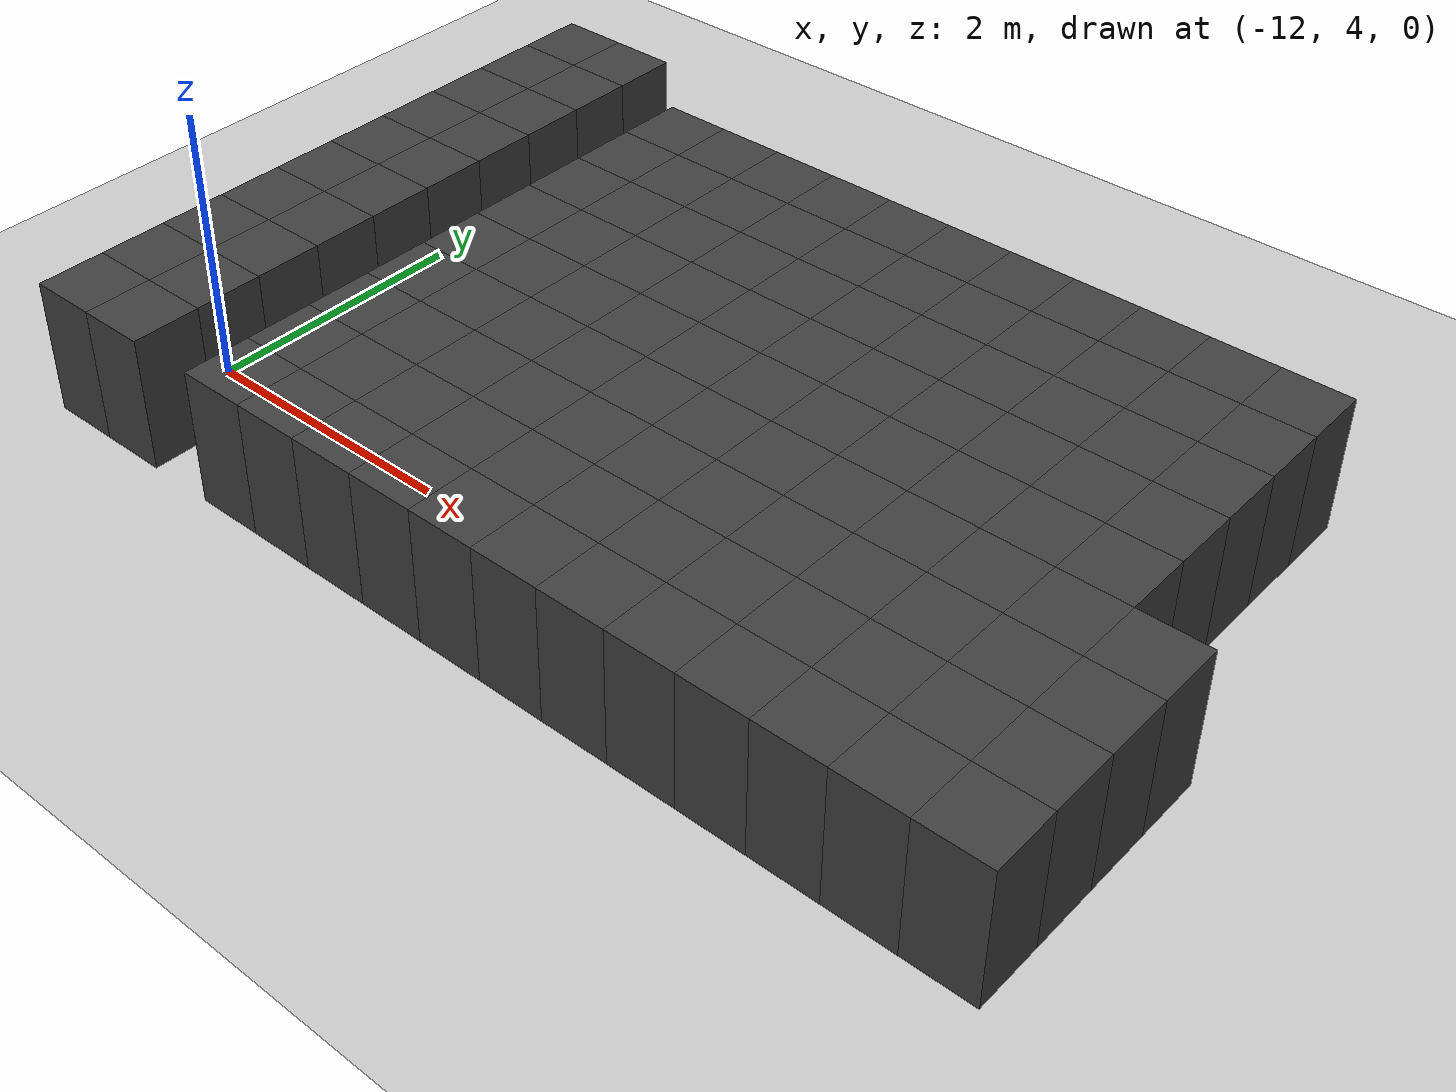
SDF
<sdf version="1.7">
 <world name="map_12818">
  <model name="ground_plane">
   <static>true</static>
   <link name="link">
    <collision name="collision">
     <geometry><plane><normal>0 0 1</normal><size>200 200</size></plane></geometry>
    </collision>
    <visual name="visual">
     <geometry><plane><normal>0 0 1</normal><size>200 200</size></plane></geometry>
     <material><ambient>0.8 0.8 0.8 1</ambient><diffuse>0.8 0.8 0.8 1</diffuse></material>
    </visual>
   </link>
  </model>
  <model name="maze_environment">
   <static>true</static>
   <link name="wall_428">
    <pose>-12.250 7.750 0.500 0 0 0</pose>
    <collision name="col"><geometry><box><size>0.5 0.5 1.0</size></box></geometry></collision>
    <visual name="vis">
     <geometry><box><size>0.5 0.5 1.0</size></box></geometry>
     <material><ambient>0.15 0.15 0.15 1</ambient><diffuse>0.25 0.25 0.25 1</diffuse></material>
    </visual>
   </link>
   <link name="wall_429">
    <pose>-11.750 7.750 0.500 0 0 0</pose>
    <collision name="col"><geometry><box><size>0.5 0.5 1.0</size></box></geometry></collision>
    <visual name="vis">
     <geometry><box><size>0.5 0.5 1.0</size></box></geometry>
     <material><ambient>0.15 0.15 0.15 1</ambient><diffuse>0.25 0.25 0.25 1</diffuse></material>
    </visual>
   </link>
   <link name="wall_469">
    <pose>-12.250 7.250 0.500 0 0 0</pose>
    <collision name="col"><geometry><box><size>0.5 0.5 1.0</size></box></geometry></collision>
    <visual name="vis">
     <geometry><box><size>0.5 0.5 1.0</size></box></geometry>
     <material><ambient>0.15 0.15 0.15 1</ambient><diffuse>0.25 0.25 0.25 1</diffuse></material>
    </visual>
   </link>
   <link name="wall_470">
    <pose>-11.750 7.250 0.500 0 0 0</pose>
    <collision name="col"><geometry><box><size>0.5 0.5 1.0</size></box></geometry></collision>
    <visual name="vis">
     <geometry><box><size>0.5 0.5 1.0</size></box></geometry>
     <material><ambient>0.15 0.15 0.15 1</ambient><diffuse>0.25 0.25 0.25 1</diffuse></material>
    </visual>
   </link>
   <link name="wall_471">
    <pose>-10.750 7.250 0.500 0 0 0</pose>
    <collision name="col"><geometry><box><size>0.5 0.5 1.0</size></box></geometry></collision>
    <visual name="vis">
     <geometry><box><size>0.5 0.5 1.0</size></box></geometry>
     <material><ambient>0.15 0.15 0.15 1</ambient><diffuse>0.25 0.25 0.25 1</diffuse></material>
    </visual>
   </link>
   <link name="wall_472">
    <pose>-10.250 7.250 0.500 0 0 0</pose>
    <collision name="col"><geometry><box><size>0.5 0.5 1.0</size></box></geometry></collision>
    <visual name="vis">
     <geometry><box><size>0.5 0.5 1.0</size></box></geometry>
     <material><ambient>0.15 0.15 0.15 1</ambient><diffuse>0.25 0.25 0.25 1</diffuse></material>
    </visual>
   </link>
   <link name="wall_473">
    <pose>-9.750 7.250 0.500 0 0 0</pose>
    <collision name="col"><geometry><box><size>0.5 0.5 1.0</size></box></geometry></collision>
    <visual name="vis">
     <geometry><box><size>0.5 0.5 1.0</size></box></geometry>
     <material><ambient>0.15 0.15 0.15 1</ambient><diffuse>0.25 0.25 0.25 1</diffuse></material>
    </visual>
   </link>
   <link name="wall_474">
    <pose>-9.250 7.250 0.500 0 0 0</pose>
    <collision name="col"><geometry><box><size>0.5 0.5 1.0</size></box></geometry></collision>
    <visual name="vis">
     <geometry><box><size>0.5 0.5 1.0</size></box></geometry>
     <material><ambient>0.15 0.15 0.15 1</ambient><diffuse>0.25 0.25 0.25 1</diffuse></material>
    </visual>
   </link>
   <link name="wall_475">
    <pose>-8.750 7.250 0.500 0 0 0</pose>
    <collision name="col"><geometry><box><size>0.5 0.5 1.0</size></box></geometry></collision>
    <visual name="vis">
     <geometry><box><size>0.5 0.5 1.0</size></box></geometry>
     <material><ambient>0.15 0.15 0.15 1</ambient><diffuse>0.25 0.25 0.25 1</diffuse></material>
    </visual>
   </link>
   <link name="wall_476">
    <pose>-8.250 7.250 0.500 0 0 0</pose>
    <collision name="col"><geometry><box><size>0.5 0.5 1.0</size></box></geometry></collision>
    <visual name="vis">
     <geometry><box><size>0.5 0.5 1.0</size></box></geometry>
     <material><ambient>0.15 0.15 0.15 1</ambient><diffuse>0.25 0.25 0.25 1</diffuse></material>
    </visual>
   </link>
   <link name="wall_477">
    <pose>-7.750 7.250 0.500 0 0 0</pose>
    <collision name="col"><geometry><box><size>0.5 0.5 1.0</size></box></geometry></collision>
    <visual name="vis">
     <geometry><box><size>0.5 0.5 1.0</size></box></geometry>
     <material><ambient>0.15 0.15 0.15 1</ambient><diffuse>0.25 0.25 0.25 1</diffuse></material>
    </visual>
   </link>
   <link name="wall_478">
    <pose>-7.250 7.250 0.500 0 0 0</pose>
    <collision name="col"><geometry><box><size>0.5 0.5 1.0</size></box></geometry></collision>
    <visual name="vis">
     <geometry><box><size>0.5 0.5 1.0</size></box></geometry>
     <material><ambient>0.15 0.15 0.15 1</ambient><diffuse>0.25 0.25 0.25 1</diffuse></material>
    </visual>
   </link>
   <link name="wall_479">
    <pose>-6.750 7.250 0.500 0 0 0</pose>
    <collision name="col"><geometry><box><size>0.5 0.5 1.0</size></box></geometry></collision>
    <visual name="vis">
     <geometry><box><size>0.5 0.5 1.0</size></box></geometry>
     <material><ambient>0.15 0.15 0.15 1</ambient><diffuse>0.25 0.25 0.25 1</diffuse></material>
    </visual>
   </link>
   <link name="wall_480">
    <pose>-6.250 7.250 0.500 0 0 0</pose>
    <collision name="col"><geometry><box><size>0.5 0.5 1.0</size></box></geometry></collision>
    <visual name="vis">
     <geometry><box><size>0.5 0.5 1.0</size></box></geometry>
     <material><ambient>0.15 0.15 0.15 1</ambient><diffuse>0.25 0.25 0.25 1</diffuse></material>
    </visual>
   </link>
   <link name="wall_481">
    <pose>-5.750 7.250 0.500 0 0 0</pose>
    <collision name="col"><geometry><box><size>0.5 0.5 1.0</size></box></geometry></collision>
    <visual name="vis">
     <geometry><box><size>0.5 0.5 1.0</size></box></geometry>
     <material><ambient>0.15 0.15 0.15 1</ambient><diffuse>0.25 0.25 0.25 1</diffuse></material>
    </visual>
   </link>
   <link name="wall_513">
    <pose>-12.250 6.750 0.500 0 0 0</pose>
    <collision name="col"><geometry><box><size>0.5 0.5 1.0</size></box></geometry></collision>
    <visual name="vis">
     <geometry><box><size>0.5 0.5 1.0</size></box></geometry>
     <material><ambient>0.15 0.15 0.15 1</ambient><diffuse>0.25 0.25 0.25 1</diffuse></material>
    </visual>
   </link>
   <link name="wall_514">
    <pose>-11.750 6.750 0.500 0 0 0</pose>
    <collision name="col"><geometry><box><size>0.5 0.5 1.0</size></box></geometry></collision>
    <visual name="vis">
     <geometry><box><size>0.5 0.5 1.0</size></box></geometry>
     <material><ambient>0.15 0.15 0.15 1</ambient><diffuse>0.25 0.25 0.25 1</diffuse></material>
    </visual>
   </link>
   <link name="wall_515">
    <pose>-10.750 6.750 0.500 0 0 0</pose>
    <collision name="col"><geometry><box><size>0.5 0.5 1.0</size></box></geometry></collision>
    <visual name="vis">
     <geometry><box><size>0.5 0.5 1.0</size></box></geometry>
     <material><ambient>0.15 0.15 0.15 1</ambient><diffuse>0.25 0.25 0.25 1</diffuse></material>
    </visual>
   </link>
   <link name="wall_516">
    <pose>-10.250 6.750 0.500 0 0 0</pose>
    <collision name="col"><geometry><box><size>0.5 0.5 1.0</size></box></geometry></collision>
    <visual name="vis">
     <geometry><box><size>0.5 0.5 1.0</size></box></geometry>
     <material><ambient>0.15 0.15 0.15 1</ambient><diffuse>0.25 0.25 0.25 1</diffuse></material>
    </visual>
   </link>
   <link name="wall_517">
    <pose>-9.750 6.750 0.500 0 0 0</pose>
    <collision name="col"><geometry><box><size>0.5 0.5 1.0</size></box></geometry></collision>
    <visual name="vis">
     <geometry><box><size>0.5 0.5 1.0</size></box></geometry>
     <material><ambient>0.15 0.15 0.15 1</ambient><diffuse>0.25 0.25 0.25 1</diffuse></material>
    </visual>
   </link>
   <link name="wall_518">
    <pose>-9.250 6.750 0.500 0 0 0</pose>
    <collision name="col"><geometry><box><size>0.5 0.5 1.0</size></box></geometry></collision>
    <visual name="vis">
     <geometry><box><size>0.5 0.5 1.0</size></box></geometry>
     <material><ambient>0.15 0.15 0.15 1</ambient><diffuse>0.25 0.25 0.25 1</diffuse></material>
    </visual>
   </link>
   <link name="wall_519">
    <pose>-8.750 6.750 0.500 0 0 0</pose>
    <collision name="col"><geometry><box><size>0.5 0.5 1.0</size></box></geometry></collision>
    <visual name="vis">
     <geometry><box><size>0.5 0.5 1.0</size></box></geometry>
     <material><ambient>0.15 0.15 0.15 1</ambient><diffuse>0.25 0.25 0.25 1</diffuse></material>
    </visual>
   </link>
   <link name="wall_520">
    <pose>-8.250 6.750 0.500 0 0 0</pose>
    <collision name="col"><geometry><box><size>0.5 0.5 1.0</size></box></geometry></collision>
    <visual name="vis">
     <geometry><box><size>0.5 0.5 1.0</size></box></geometry>
     <material><ambient>0.15 0.15 0.15 1</ambient><diffuse>0.25 0.25 0.25 1</diffuse></material>
    </visual>
   </link>
   <link name="wall_521">
    <pose>-7.750 6.750 0.500 0 0 0</pose>
    <collision name="col"><geometry><box><size>0.5 0.5 1.0</size></box></geometry></collision>
    <visual name="vis">
     <geometry><box><size>0.5 0.5 1.0</size></box></geometry>
     <material><ambient>0.15 0.15 0.15 1</ambient><diffuse>0.25 0.25 0.25 1</diffuse></material>
    </visual>
   </link>
   <link name="wall_522">
    <pose>-7.250 6.750 0.500 0 0 0</pose>
    <collision name="col"><geometry><box><size>0.5 0.5 1.0</size></box></geometry></collision>
    <visual name="vis">
     <geometry><box><size>0.5 0.5 1.0</size></box></geometry>
     <material><ambient>0.15 0.15 0.15 1</ambient><diffuse>0.25 0.25 0.25 1</diffuse></material>
    </visual>
   </link>
   <link name="wall_523">
    <pose>-6.750 6.750 0.500 0 0 0</pose>
    <collision name="col"><geometry><box><size>0.5 0.5 1.0</size></box></geometry></collision>
    <visual name="vis">
     <geometry><box><size>0.5 0.5 1.0</size></box></geometry>
     <material><ambient>0.15 0.15 0.15 1</ambient><diffuse>0.25 0.25 0.25 1</diffuse></material>
    </visual>
   </link>
   <link name="wall_524">
    <pose>-6.250 6.750 0.500 0 0 0</pose>
    <collision name="col"><geometry><box><size>0.5 0.5 1.0</size></box></geometry></collision>
    <visual name="vis">
     <geometry><box><size>0.5 0.5 1.0</size></box></geometry>
     <material><ambient>0.15 0.15 0.15 1</ambient><diffuse>0.25 0.25 0.25 1</diffuse></material>
    </visual>
   </link>
   <link name="wall_525">
    <pose>-5.750 6.750 0.500 0 0 0</pose>
    <collision name="col"><geometry><box><size>0.5 0.5 1.0</size></box></geometry></collision>
    <visual name="vis">
     <geometry><box><size>0.5 0.5 1.0</size></box></geometry>
     <material><ambient>0.15 0.15 0.15 1</ambient><diffuse>0.25 0.25 0.25 1</diffuse></material>
    </visual>
   </link>
   <link name="wall_561">
    <pose>-12.250 6.250 0.500 0 0 0</pose>
    <collision name="col"><geometry><box><size>0.5 0.5 1.0</size></box></geometry></collision>
    <visual name="vis">
     <geometry><box><size>0.5 0.5 1.0</size></box></geometry>
     <material><ambient>0.15 0.15 0.15 1</ambient><diffuse>0.25 0.25 0.25 1</diffuse></material>
    </visual>
   </link>
   <link name="wall_562">
    <pose>-11.750 6.250 0.500 0 0 0</pose>
    <collision name="col"><geometry><box><size>0.5 0.5 1.0</size></box></geometry></collision>
    <visual name="vis">
     <geometry><box><size>0.5 0.5 1.0</size></box></geometry>
     <material><ambient>0.15 0.15 0.15 1</ambient><diffuse>0.25 0.25 0.25 1</diffuse></material>
    </visual>
   </link>
   <link name="wall_563">
    <pose>-10.750 6.250 0.500 0 0 0</pose>
    <collision name="col"><geometry><box><size>0.5 0.5 1.0</size></box></geometry></collision>
    <visual name="vis">
     <geometry><box><size>0.5 0.5 1.0</size></box></geometry>
     <material><ambient>0.15 0.15 0.15 1</ambient><diffuse>0.25 0.25 0.25 1</diffuse></material>
    </visual>
   </link>
   <link name="wall_564">
    <pose>-10.250 6.250 0.500 0 0 0</pose>
    <collision name="col"><geometry><box><size>0.5 0.5 1.0</size></box></geometry></collision>
    <visual name="vis">
     <geometry><box><size>0.5 0.5 1.0</size></box></geometry>
     <material><ambient>0.15 0.15 0.15 1</ambient><diffuse>0.25 0.25 0.25 1</diffuse></material>
    </visual>
   </link>
   <link name="wall_565">
    <pose>-9.750 6.250 0.500 0 0 0</pose>
    <collision name="col"><geometry><box><size>0.5 0.5 1.0</size></box></geometry></collision>
    <visual name="vis">
     <geometry><box><size>0.5 0.5 1.0</size></box></geometry>
     <material><ambient>0.15 0.15 0.15 1</ambient><diffuse>0.25 0.25 0.25 1</diffuse></material>
    </visual>
   </link>
   <link name="wall_566">
    <pose>-9.250 6.250 0.500 0 0 0</pose>
    <collision name="col"><geometry><box><size>0.5 0.5 1.0</size></box></geometry></collision>
    <visual name="vis">
     <geometry><box><size>0.5 0.5 1.0</size></box></geometry>
     <material><ambient>0.15 0.15 0.15 1</ambient><diffuse>0.25 0.25 0.25 1</diffuse></material>
    </visual>
   </link>
   <link name="wall_567">
    <pose>-8.750 6.250 0.500 0 0 0</pose>
    <collision name="col"><geometry><box><size>0.5 0.5 1.0</size></box></geometry></collision>
    <visual name="vis">
     <geometry><box><size>0.5 0.5 1.0</size></box></geometry>
     <material><ambient>0.15 0.15 0.15 1</ambient><diffuse>0.25 0.25 0.25 1</diffuse></material>
    </visual>
   </link>
   <link name="wall_568">
    <pose>-8.250 6.250 0.500 0 0 0</pose>
    <collision name="col"><geometry><box><size>0.5 0.5 1.0</size></box></geometry></collision>
    <visual name="vis">
     <geometry><box><size>0.5 0.5 1.0</size></box></geometry>
     <material><ambient>0.15 0.15 0.15 1</ambient><diffuse>0.25 0.25 0.25 1</diffuse></material>
    </visual>
   </link>
   <link name="wall_569">
    <pose>-7.750 6.250 0.500 0 0 0</pose>
    <collision name="col"><geometry><box><size>0.5 0.5 1.0</size></box></geometry></collision>
    <visual name="vis">
     <geometry><box><size>0.5 0.5 1.0</size></box></geometry>
     <material><ambient>0.15 0.15 0.15 1</ambient><diffuse>0.25 0.25 0.25 1</diffuse></material>
    </visual>
   </link>
   <link name="wall_570">
    <pose>-7.250 6.250 0.500 0 0 0</pose>
    <collision name="col"><geometry><box><size>0.5 0.5 1.0</size></box></geometry></collision>
    <visual name="vis">
     <geometry><box><size>0.5 0.5 1.0</size></box></geometry>
     <material><ambient>0.15 0.15 0.15 1</ambient><diffuse>0.25 0.25 0.25 1</diffuse></material>
    </visual>
   </link>
   <link name="wall_571">
    <pose>-6.750 6.250 0.500 0 0 0</pose>
    <collision name="col"><geometry><box><size>0.5 0.5 1.0</size></box></geometry></collision>
    <visual name="vis">
     <geometry><box><size>0.5 0.5 1.0</size></box></geometry>
     <material><ambient>0.15 0.15 0.15 1</ambient><diffuse>0.25 0.25 0.25 1</diffuse></material>
    </visual>
   </link>
   <link name="wall_572">
    <pose>-6.250 6.250 0.500 0 0 0</pose>
    <collision name="col"><geometry><box><size>0.5 0.5 1.0</size></box></geometry></collision>
    <visual name="vis">
     <geometry><box><size>0.5 0.5 1.0</size></box></geometry>
     <material><ambient>0.15 0.15 0.15 1</ambient><diffuse>0.25 0.25 0.25 1</diffuse></material>
    </visual>
   </link>
   <link name="wall_573">
    <pose>-5.750 6.250 0.500 0 0 0</pose>
    <collision name="col"><geometry><box><size>0.5 0.5 1.0</size></box></geometry></collision>
    <visual name="vis">
     <geometry><box><size>0.5 0.5 1.0</size></box></geometry>
     <material><ambient>0.15 0.15 0.15 1</ambient><diffuse>0.25 0.25 0.25 1</diffuse></material>
    </visual>
   </link>
   <link name="wall_609">
    <pose>-12.250 5.750 0.500 0 0 0</pose>
    <collision name="col"><geometry><box><size>0.5 0.5 1.0</size></box></geometry></collision>
    <visual name="vis">
     <geometry><box><size>0.5 0.5 1.0</size></box></geometry>
     <material><ambient>0.15 0.15 0.15 1</ambient><diffuse>0.25 0.25 0.25 1</diffuse></material>
    </visual>
   </link>
   <link name="wall_610">
    <pose>-11.750 5.750 0.500 0 0 0</pose>
    <collision name="col"><geometry><box><size>0.5 0.5 1.0</size></box></geometry></collision>
    <visual name="vis">
     <geometry><box><size>0.5 0.5 1.0</size></box></geometry>
     <material><ambient>0.15 0.15 0.15 1</ambient><diffuse>0.25 0.25 0.25 1</diffuse></material>
    </visual>
   </link>
   <link name="wall_611">
    <pose>-10.750 5.750 0.500 0 0 0</pose>
    <collision name="col"><geometry><box><size>0.5 0.5 1.0</size></box></geometry></collision>
    <visual name="vis">
     <geometry><box><size>0.5 0.5 1.0</size></box></geometry>
     <material><ambient>0.15 0.15 0.15 1</ambient><diffuse>0.25 0.25 0.25 1</diffuse></material>
    </visual>
   </link>
   <link name="wall_612">
    <pose>-10.250 5.750 0.500 0 0 0</pose>
    <collision name="col"><geometry><box><size>0.5 0.5 1.0</size></box></geometry></collision>
    <visual name="vis">
     <geometry><box><size>0.5 0.5 1.0</size></box></geometry>
     <material><ambient>0.15 0.15 0.15 1</ambient><diffuse>0.25 0.25 0.25 1</diffuse></material>
    </visual>
   </link>
   <link name="wall_613">
    <pose>-9.750 5.750 0.500 0 0 0</pose>
    <collision name="col"><geometry><box><size>0.5 0.5 1.0</size></box></geometry></collision>
    <visual name="vis">
     <geometry><box><size>0.5 0.5 1.0</size></box></geometry>
     <material><ambient>0.15 0.15 0.15 1</ambient><diffuse>0.25 0.25 0.25 1</diffuse></material>
    </visual>
   </link>
   <link name="wall_614">
    <pose>-9.250 5.750 0.500 0 0 0</pose>
    <collision name="col"><geometry><box><size>0.5 0.5 1.0</size></box></geometry></collision>
    <visual name="vis">
     <geometry><box><size>0.5 0.5 1.0</size></box></geometry>
     <material><ambient>0.15 0.15 0.15 1</ambient><diffuse>0.25 0.25 0.25 1</diffuse></material>
    </visual>
   </link>
   <link name="wall_615">
    <pose>-8.750 5.750 0.500 0 0 0</pose>
    <collision name="col"><geometry><box><size>0.5 0.5 1.0</size></box></geometry></collision>
    <visual name="vis">
     <geometry><box><size>0.5 0.5 1.0</size></box></geometry>
     <material><ambient>0.15 0.15 0.15 1</ambient><diffuse>0.25 0.25 0.25 1</diffuse></material>
    </visual>
   </link>
   <link name="wall_616">
    <pose>-8.250 5.750 0.500 0 0 0</pose>
    <collision name="col"><geometry><box><size>0.5 0.5 1.0</size></box></geometry></collision>
    <visual name="vis">
     <geometry><box><size>0.5 0.5 1.0</size></box></geometry>
     <material><ambient>0.15 0.15 0.15 1</ambient><diffuse>0.25 0.25 0.25 1</diffuse></material>
    </visual>
   </link>
   <link name="wall_617">
    <pose>-7.750 5.750 0.500 0 0 0</pose>
    <collision name="col"><geometry><box><size>0.5 0.5 1.0</size></box></geometry></collision>
    <visual name="vis">
     <geometry><box><size>0.5 0.5 1.0</size></box></geometry>
     <material><ambient>0.15 0.15 0.15 1</ambient><diffuse>0.25 0.25 0.25 1</diffuse></material>
    </visual>
   </link>
   <link name="wall_618">
    <pose>-7.250 5.750 0.500 0 0 0</pose>
    <collision name="col"><geometry><box><size>0.5 0.5 1.0</size></box></geometry></collision>
    <visual name="vis">
     <geometry><box><size>0.5 0.5 1.0</size></box></geometry>
     <material><ambient>0.15 0.15 0.15 1</ambient><diffuse>0.25 0.25 0.25 1</diffuse></material>
    </visual>
   </link>
   <link name="wall_619">
    <pose>-6.750 5.750 0.500 0 0 0</pose>
    <collision name="col"><geometry><box><size>0.5 0.5 1.0</size></box></geometry></collision>
    <visual name="vis">
     <geometry><box><size>0.5 0.5 1.0</size></box></geometry>
     <material><ambient>0.15 0.15 0.15 1</ambient><diffuse>0.25 0.25 0.25 1</diffuse></material>
    </visual>
   </link>
   <link name="wall_620">
    <pose>-6.250 5.750 0.500 0 0 0</pose>
    <collision name="col"><geometry><box><size>0.5 0.5 1.0</size></box></geometry></collision>
    <visual name="vis">
     <geometry><box><size>0.5 0.5 1.0</size></box></geometry>
     <material><ambient>0.15 0.15 0.15 1</ambient><diffuse>0.25 0.25 0.25 1</diffuse></material>
    </visual>
   </link>
   <link name="wall_621">
    <pose>-5.750 5.750 0.500 0 0 0</pose>
    <collision name="col"><geometry><box><size>0.5 0.5 1.0</size></box></geometry></collision>
    <visual name="vis">
     <geometry><box><size>0.5 0.5 1.0</size></box></geometry>
     <material><ambient>0.15 0.15 0.15 1</ambient><diffuse>0.25 0.25 0.25 1</diffuse></material>
    </visual>
   </link>
   <link name="wall_657">
    <pose>-12.250 5.250 0.500 0 0 0</pose>
    <collision name="col"><geometry><box><size>0.5 0.5 1.0</size></box></geometry></collision>
    <visual name="vis">
     <geometry><box><size>0.5 0.5 1.0</size></box></geometry>
     <material><ambient>0.15 0.15 0.15 1</ambient><diffuse>0.25 0.25 0.25 1</diffuse></material>
    </visual>
   </link>
   <link name="wall_658">
    <pose>-11.750 5.250 0.500 0 0 0</pose>
    <collision name="col"><geometry><box><size>0.5 0.5 1.0</size></box></geometry></collision>
    <visual name="vis">
     <geometry><box><size>0.5 0.5 1.0</size></box></geometry>
     <material><ambient>0.15 0.15 0.15 1</ambient><diffuse>0.25 0.25 0.25 1</diffuse></material>
    </visual>
   </link>
   <link name="wall_659">
    <pose>-10.750 5.250 0.500 0 0 0</pose>
    <collision name="col"><geometry><box><size>0.5 0.5 1.0</size></box></geometry></collision>
    <visual name="vis">
     <geometry><box><size>0.5 0.5 1.0</size></box></geometry>
     <material><ambient>0.15 0.15 0.15 1</ambient><diffuse>0.25 0.25 0.25 1</diffuse></material>
    </visual>
   </link>
   <link name="wall_660">
    <pose>-10.250 5.250 0.500 0 0 0</pose>
    <collision name="col"><geometry><box><size>0.5 0.5 1.0</size></box></geometry></collision>
    <visual name="vis">
     <geometry><box><size>0.5 0.5 1.0</size></box></geometry>
     <material><ambient>0.15 0.15 0.15 1</ambient><diffuse>0.25 0.25 0.25 1</diffuse></material>
    </visual>
   </link>
   <link name="wall_661">
    <pose>-9.750 5.250 0.500 0 0 0</pose>
    <collision name="col"><geometry><box><size>0.5 0.5 1.0</size></box></geometry></collision>
    <visual name="vis">
     <geometry><box><size>0.5 0.5 1.0</size></box></geometry>
     <material><ambient>0.15 0.15 0.15 1</ambient><diffuse>0.25 0.25 0.25 1</diffuse></material>
    </visual>
   </link>
   <link name="wall_662">
    <pose>-9.250 5.250 0.500 0 0 0</pose>
    <collision name="col"><geometry><box><size>0.5 0.5 1.0</size></box></geometry></collision>
    <visual name="vis">
     <geometry><box><size>0.5 0.5 1.0</size></box></geometry>
     <material><ambient>0.15 0.15 0.15 1</ambient><diffuse>0.25 0.25 0.25 1</diffuse></material>
    </visual>
   </link>
   <link name="wall_663">
    <pose>-8.750 5.250 0.500 0 0 0</pose>
    <collision name="col"><geometry><box><size>0.5 0.5 1.0</size></box></geometry></collision>
    <visual name="vis">
     <geometry><box><size>0.5 0.5 1.0</size></box></geometry>
     <material><ambient>0.15 0.15 0.15 1</ambient><diffuse>0.25 0.25 0.25 1</diffuse></material>
    </visual>
   </link>
   <link name="wall_664">
    <pose>-8.250 5.250 0.500 0 0 0</pose>
    <collision name="col"><geometry><box><size>0.5 0.5 1.0</size></box></geometry></collision>
    <visual name="vis">
     <geometry><box><size>0.5 0.5 1.0</size></box></geometry>
     <material><ambient>0.15 0.15 0.15 1</ambient><diffuse>0.25 0.25 0.25 1</diffuse></material>
    </visual>
   </link>
   <link name="wall_665">
    <pose>-7.750 5.250 0.500 0 0 0</pose>
    <collision name="col"><geometry><box><size>0.5 0.5 1.0</size></box></geometry></collision>
    <visual name="vis">
     <geometry><box><size>0.5 0.5 1.0</size></box></geometry>
     <material><ambient>0.15 0.15 0.15 1</ambient><diffuse>0.25 0.25 0.25 1</diffuse></material>
    </visual>
   </link>
   <link name="wall_666">
    <pose>-7.250 5.250 0.500 0 0 0</pose>
    <collision name="col"><geometry><box><size>0.5 0.5 1.0</size></box></geometry></collision>
    <visual name="vis">
     <geometry><box><size>0.5 0.5 1.0</size></box></geometry>
     <material><ambient>0.15 0.15 0.15 1</ambient><diffuse>0.25 0.25 0.25 1</diffuse></material>
    </visual>
   </link>
   <link name="wall_667">
    <pose>-6.750 5.250 0.500 0 0 0</pose>
    <collision name="col"><geometry><box><size>0.5 0.5 1.0</size></box></geometry></collision>
    <visual name="vis">
     <geometry><box><size>0.5 0.5 1.0</size></box></geometry>
     <material><ambient>0.15 0.15 0.15 1</ambient><diffuse>0.25 0.25 0.25 1</diffuse></material>
    </visual>
   </link>
   <link name="wall_668">
    <pose>-6.250 5.250 0.500 0 0 0</pose>
    <collision name="col"><geometry><box><size>0.5 0.5 1.0</size></box></geometry></collision>
    <visual name="vis">
     <geometry><box><size>0.5 0.5 1.0</size></box></geometry>
     <material><ambient>0.15 0.15 0.15 1</ambient><diffuse>0.25 0.25 0.25 1</diffuse></material>
    </visual>
   </link>
   <link name="wall_669">
    <pose>-5.750 5.250 0.500 0 0 0</pose>
    <collision name="col"><geometry><box><size>0.5 0.5 1.0</size></box></geometry></collision>
    <visual name="vis">
     <geometry><box><size>0.5 0.5 1.0</size></box></geometry>
     <material><ambient>0.15 0.15 0.15 1</ambient><diffuse>0.25 0.25 0.25 1</diffuse></material>
    </visual>
   </link>
   <link name="wall_705">
    <pose>-12.250 4.750 0.500 0 0 0</pose>
    <collision name="col"><geometry><box><size>0.5 0.5 1.0</size></box></geometry></collision>
    <visual name="vis">
     <geometry><box><size>0.5 0.5 1.0</size></box></geometry>
     <material><ambient>0.15 0.15 0.15 1</ambient><diffuse>0.25 0.25 0.25 1</diffuse></material>
    </visual>
   </link>
   <link name="wall_706">
    <pose>-11.750 4.750 0.500 0 0 0</pose>
    <collision name="col"><geometry><box><size>0.5 0.5 1.0</size></box></geometry></collision>
    <visual name="vis">
     <geometry><box><size>0.5 0.5 1.0</size></box></geometry>
     <material><ambient>0.15 0.15 0.15 1</ambient><diffuse>0.25 0.25 0.25 1</diffuse></material>
    </visual>
   </link>
   <link name="wall_707">
    <pose>-10.750 4.750 0.500 0 0 0</pose>
    <collision name="col"><geometry><box><size>0.5 0.5 1.0</size></box></geometry></collision>
    <visual name="vis">
     <geometry><box><size>0.5 0.5 1.0</size></box></geometry>
     <material><ambient>0.15 0.15 0.15 1</ambient><diffuse>0.25 0.25 0.25 1</diffuse></material>
    </visual>
   </link>
   <link name="wall_708">
    <pose>-10.250 4.750 0.500 0 0 0</pose>
    <collision name="col"><geometry><box><size>0.5 0.5 1.0</size></box></geometry></collision>
    <visual name="vis">
     <geometry><box><size>0.5 0.5 1.0</size></box></geometry>
     <material><ambient>0.15 0.15 0.15 1</ambient><diffuse>0.25 0.25 0.25 1</diffuse></material>
    </visual>
   </link>
   <link name="wall_709">
    <pose>-9.750 4.750 0.500 0 0 0</pose>
    <collision name="col"><geometry><box><size>0.5 0.5 1.0</size></box></geometry></collision>
    <visual name="vis">
     <geometry><box><size>0.5 0.5 1.0</size></box></geometry>
     <material><ambient>0.15 0.15 0.15 1</ambient><diffuse>0.25 0.25 0.25 1</diffuse></material>
    </visual>
   </link>
   <link name="wall_710">
    <pose>-9.250 4.750 0.500 0 0 0</pose>
    <collision name="col"><geometry><box><size>0.5 0.5 1.0</size></box></geometry></collision>
    <visual name="vis">
     <geometry><box><size>0.5 0.5 1.0</size></box></geometry>
     <material><ambient>0.15 0.15 0.15 1</ambient><diffuse>0.25 0.25 0.25 1</diffuse></material>
    </visual>
   </link>
   <link name="wall_711">
    <pose>-8.750 4.750 0.500 0 0 0</pose>
    <collision name="col"><geometry><box><size>0.5 0.5 1.0</size></box></geometry></collision>
    <visual name="vis">
     <geometry><box><size>0.5 0.5 1.0</size></box></geometry>
     <material><ambient>0.15 0.15 0.15 1</ambient><diffuse>0.25 0.25 0.25 1</diffuse></material>
    </visual>
   </link>
   <link name="wall_712">
    <pose>-8.250 4.750 0.500 0 0 0</pose>
    <collision name="col"><geometry><box><size>0.5 0.5 1.0</size></box></geometry></collision>
    <visual name="vis">
     <geometry><box><size>0.5 0.5 1.0</size></box></geometry>
     <material><ambient>0.15 0.15 0.15 1</ambient><diffuse>0.25 0.25 0.25 1</diffuse></material>
    </visual>
   </link>
   <link name="wall_713">
    <pose>-7.750 4.750 0.500 0 0 0</pose>
    <collision name="col"><geometry><box><size>0.5 0.5 1.0</size></box></geometry></collision>
    <visual name="vis">
     <geometry><box><size>0.5 0.5 1.0</size></box></geometry>
     <material><ambient>0.15 0.15 0.15 1</ambient><diffuse>0.25 0.25 0.25 1</diffuse></material>
    </visual>
   </link>
   <link name="wall_714">
    <pose>-7.250 4.750 0.500 0 0 0</pose>
    <collision name="col"><geometry><box><size>0.5 0.5 1.0</size></box></geometry></collision>
    <visual name="vis">
     <geometry><box><size>0.5 0.5 1.0</size></box></geometry>
     <material><ambient>0.15 0.15 0.15 1</ambient><diffuse>0.25 0.25 0.25 1</diffuse></material>
    </visual>
   </link>
   <link name="wall_715">
    <pose>-6.750 4.750 0.500 0 0 0</pose>
    <collision name="col"><geometry><box><size>0.5 0.5 1.0</size></box></geometry></collision>
    <visual name="vis">
     <geometry><box><size>0.5 0.5 1.0</size></box></geometry>
     <material><ambient>0.15 0.15 0.15 1</ambient><diffuse>0.25 0.25 0.25 1</diffuse></material>
    </visual>
   </link>
   <link name="wall_716">
    <pose>-6.250 4.750 0.500 0 0 0</pose>
    <collision name="col"><geometry><box><size>0.5 0.5 1.0</size></box></geometry></collision>
    <visual name="vis">
     <geometry><box><size>0.5 0.5 1.0</size></box></geometry>
     <material><ambient>0.15 0.15 0.15 1</ambient><diffuse>0.25 0.25 0.25 1</diffuse></material>
    </visual>
   </link>
   <link name="wall_717">
    <pose>-5.750 4.750 0.500 0 0 0</pose>
    <collision name="col"><geometry><box><size>0.5 0.5 1.0</size></box></geometry></collision>
    <visual name="vis">
     <geometry><box><size>0.5 0.5 1.0</size></box></geometry>
     <material><ambient>0.15 0.15 0.15 1</ambient><diffuse>0.25 0.25 0.25 1</diffuse></material>
    </visual>
   </link>
   <link name="wall_718">
    <pose>-5.250 4.750 0.500 0 0 0</pose>
    <collision name="col"><geometry><box><size>0.5 0.5 1.0</size></box></geometry></collision>
    <visual name="vis">
     <geometry><box><size>0.5 0.5 1.0</size></box></geometry>
     <material><ambient>0.15 0.15 0.15 1</ambient><diffuse>0.25 0.25 0.25 1</diffuse></material>
    </visual>
   </link>
   <link name="wall_753">
    <pose>-12.250 4.250 0.500 0 0 0</pose>
    <collision name="col"><geometry><box><size>0.5 0.5 1.0</size></box></geometry></collision>
    <visual name="vis">
     <geometry><box><size>0.5 0.5 1.0</size></box></geometry>
     <material><ambient>0.15 0.15 0.15 1</ambient><diffuse>0.25 0.25 0.25 1</diffuse></material>
    </visual>
   </link>
   <link name="wall_754">
    <pose>-11.750 4.250 0.500 0 0 0</pose>
    <collision name="col"><geometry><box><size>0.5 0.5 1.0</size></box></geometry></collision>
    <visual name="vis">
     <geometry><box><size>0.5 0.5 1.0</size></box></geometry>
     <material><ambient>0.15 0.15 0.15 1</ambient><diffuse>0.25 0.25 0.25 1</diffuse></material>
    </visual>
   </link>
   <link name="wall_755">
    <pose>-10.750 4.250 0.500 0 0 0</pose>
    <collision name="col"><geometry><box><size>0.5 0.5 1.0</size></box></geometry></collision>
    <visual name="vis">
     <geometry><box><size>0.5 0.5 1.0</size></box></geometry>
     <material><ambient>0.15 0.15 0.15 1</ambient><diffuse>0.25 0.25 0.25 1</diffuse></material>
    </visual>
   </link>
   <link name="wall_756">
    <pose>-10.250 4.250 0.500 0 0 0</pose>
    <collision name="col"><geometry><box><size>0.5 0.5 1.0</size></box></geometry></collision>
    <visual name="vis">
     <geometry><box><size>0.5 0.5 1.0</size></box></geometry>
     <material><ambient>0.15 0.15 0.15 1</ambient><diffuse>0.25 0.25 0.25 1</diffuse></material>
    </visual>
   </link>
   <link name="wall_757">
    <pose>-9.750 4.250 0.500 0 0 0</pose>
    <collision name="col"><geometry><box><size>0.5 0.5 1.0</size></box></geometry></collision>
    <visual name="vis">
     <geometry><box><size>0.5 0.5 1.0</size></box></geometry>
     <material><ambient>0.15 0.15 0.15 1</ambient><diffuse>0.25 0.25 0.25 1</diffuse></material>
    </visual>
   </link>
   <link name="wall_758">
    <pose>-9.250 4.250 0.500 0 0 0</pose>
    <collision name="col"><geometry><box><size>0.5 0.5 1.0</size></box></geometry></collision>
    <visual name="vis">
     <geometry><box><size>0.5 0.5 1.0</size></box></geometry>
     <material><ambient>0.15 0.15 0.15 1</ambient><diffuse>0.25 0.25 0.25 1</diffuse></material>
    </visual>
   </link>
   <link name="wall_759">
    <pose>-8.750 4.250 0.500 0 0 0</pose>
    <collision name="col"><geometry><box><size>0.5 0.5 1.0</size></box></geometry></collision>
    <visual name="vis">
     <geometry><box><size>0.5 0.5 1.0</size></box></geometry>
     <material><ambient>0.15 0.15 0.15 1</ambient><diffuse>0.25 0.25 0.25 1</diffuse></material>
    </visual>
   </link>
   <link name="wall_760">
    <pose>-8.250 4.250 0.500 0 0 0</pose>
    <collision name="col"><geometry><box><size>0.5 0.5 1.0</size></box></geometry></collision>
    <visual name="vis">
     <geometry><box><size>0.5 0.5 1.0</size></box></geometry>
     <material><ambient>0.15 0.15 0.15 1</ambient><diffuse>0.25 0.25 0.25 1</diffuse></material>
    </visual>
   </link>
   <link name="wall_761">
    <pose>-7.750 4.250 0.500 0 0 0</pose>
    <collision name="col"><geometry><box><size>0.5 0.5 1.0</size></box></geometry></collision>
    <visual name="vis">
     <geometry><box><size>0.5 0.5 1.0</size></box></geometry>
     <material><ambient>0.15 0.15 0.15 1</ambient><diffuse>0.25 0.25 0.25 1</diffuse></material>
    </visual>
   </link>
   <link name="wall_762">
    <pose>-7.250 4.250 0.500 0 0 0</pose>
    <collision name="col"><geometry><box><size>0.5 0.5 1.0</size></box></geometry></collision>
    <visual name="vis">
     <geometry><box><size>0.5 0.5 1.0</size></box></geometry>
     <material><ambient>0.15 0.15 0.15 1</ambient><diffuse>0.25 0.25 0.25 1</diffuse></material>
    </visual>
   </link>
   <link name="wall_763">
    <pose>-6.750 4.250 0.500 0 0 0</pose>
    <collision name="col"><geometry><box><size>0.5 0.5 1.0</size></box></geometry></collision>
    <visual name="vis">
     <geometry><box><size>0.5 0.5 1.0</size></box></geometry>
     <material><ambient>0.15 0.15 0.15 1</ambient><diffuse>0.25 0.25 0.25 1</diffuse></material>
    </visual>
   </link>
   <link name="wall_764">
    <pose>-6.250 4.250 0.500 0 0 0</pose>
    <collision name="col"><geometry><box><size>0.5 0.5 1.0</size></box></geometry></collision>
    <visual name="vis">
     <geometry><box><size>0.5 0.5 1.0</size></box></geometry>
     <material><ambient>0.15 0.15 0.15 1</ambient><diffuse>0.25 0.25 0.25 1</diffuse></material>
    </visual>
   </link>
   <link name="wall_765">
    <pose>-5.750 4.250 0.500 0 0 0</pose>
    <collision name="col"><geometry><box><size>0.5 0.5 1.0</size></box></geometry></collision>
    <visual name="vis">
     <geometry><box><size>0.5 0.5 1.0</size></box></geometry>
     <material><ambient>0.15 0.15 0.15 1</ambient><diffuse>0.25 0.25 0.25 1</diffuse></material>
    </visual>
   </link>
   <link name="wall_766">
    <pose>-5.250 4.250 0.500 0 0 0</pose>
    <collision name="col"><geometry><box><size>0.5 0.5 1.0</size></box></geometry></collision>
    <visual name="vis">
     <geometry><box><size>0.5 0.5 1.0</size></box></geometry>
     <material><ambient>0.15 0.15 0.15 1</ambient><diffuse>0.25 0.25 0.25 1</diffuse></material>
    </visual>
   </link>
   <link name="wall_801">
    <pose>-12.250 3.750 0.500 0 0 0</pose>
    <collision name="col"><geometry><box><size>0.5 0.5 1.0</size></box></geometry></collision>
    <visual name="vis">
     <geometry><box><size>0.5 0.5 1.0</size></box></geometry>
     <material><ambient>0.15 0.15 0.15 1</ambient><diffuse>0.25 0.25 0.25 1</diffuse></material>
    </visual>
   </link>
   <link name="wall_802">
    <pose>-11.750 3.750 0.500 0 0 0</pose>
    <collision name="col"><geometry><box><size>0.5 0.5 1.0</size></box></geometry></collision>
    <visual name="vis">
     <geometry><box><size>0.5 0.5 1.0</size></box></geometry>
     <material><ambient>0.15 0.15 0.15 1</ambient><diffuse>0.25 0.25 0.25 1</diffuse></material>
    </visual>
   </link>
   <link name="wall_803">
    <pose>-10.750 3.750 0.500 0 0 0</pose>
    <collision name="col"><geometry><box><size>0.5 0.5 1.0</size></box></geometry></collision>
    <visual name="vis">
     <geometry><box><size>0.5 0.5 1.0</size></box></geometry>
     <material><ambient>0.15 0.15 0.15 1</ambient><diffuse>0.25 0.25 0.25 1</diffuse></material>
    </visual>
   </link>
   <link name="wall_804">
    <pose>-10.250 3.750 0.500 0 0 0</pose>
    <collision name="col"><geometry><box><size>0.5 0.5 1.0</size></box></geometry></collision>
    <visual name="vis">
     <geometry><box><size>0.5 0.5 1.0</size></box></geometry>
     <material><ambient>0.15 0.15 0.15 1</ambient><diffuse>0.25 0.25 0.25 1</diffuse></material>
    </visual>
   </link>
   <link name="wall_805">
    <pose>-9.750 3.750 0.500 0 0 0</pose>
    <collision name="col"><geometry><box><size>0.5 0.5 1.0</size></box></geometry></collision>
    <visual name="vis">
     <geometry><box><size>0.5 0.5 1.0</size></box></geometry>
     <material><ambient>0.15 0.15 0.15 1</ambient><diffuse>0.25 0.25 0.25 1</diffuse></material>
    </visual>
   </link>
   <link name="wall_806">
    <pose>-9.250 3.750 0.500 0 0 0</pose>
    <collision name="col"><geometry><box><size>0.5 0.5 1.0</size></box></geometry></collision>
    <visual name="vis">
     <geometry><box><size>0.5 0.5 1.0</size></box></geometry>
     <material><ambient>0.15 0.15 0.15 1</ambient><diffuse>0.25 0.25 0.25 1</diffuse></material>
    </visual>
   </link>
   <link name="wall_807">
    <pose>-8.750 3.750 0.500 0 0 0</pose>
    <collision name="col"><geometry><box><size>0.5 0.5 1.0</size></box></geometry></collision>
    <visual name="vis">
     <geometry><box><size>0.5 0.5 1.0</size></box></geometry>
     <material><ambient>0.15 0.15 0.15 1</ambient><diffuse>0.25 0.25 0.25 1</diffuse></material>
    </visual>
   </link>
   <link name="wall_808">
    <pose>-8.250 3.750 0.500 0 0 0</pose>
    <collision name="col"><geometry><box><size>0.5 0.5 1.0</size></box></geometry></collision>
    <visual name="vis">
     <geometry><box><size>0.5 0.5 1.0</size></box></geometry>
     <material><ambient>0.15 0.15 0.15 1</ambient><diffuse>0.25 0.25 0.25 1</diffuse></material>
    </visual>
   </link>
   <link name="wall_809">
    <pose>-7.750 3.750 0.500 0 0 0</pose>
    <collision name="col"><geometry><box><size>0.5 0.5 1.0</size></box></geometry></collision>
    <visual name="vis">
     <geometry><box><size>0.5 0.5 1.0</size></box></geometry>
     <material><ambient>0.15 0.15 0.15 1</ambient><diffuse>0.25 0.25 0.25 1</diffuse></material>
    </visual>
   </link>
   <link name="wall_810">
    <pose>-7.250 3.750 0.500 0 0 0</pose>
    <collision name="col"><geometry><box><size>0.5 0.5 1.0</size></box></geometry></collision>
    <visual name="vis">
     <geometry><box><size>0.5 0.5 1.0</size></box></geometry>
     <material><ambient>0.15 0.15 0.15 1</ambient><diffuse>0.25 0.25 0.25 1</diffuse></material>
    </visual>
   </link>
   <link name="wall_811">
    <pose>-6.750 3.750 0.500 0 0 0</pose>
    <collision name="col"><geometry><box><size>0.5 0.5 1.0</size></box></geometry></collision>
    <visual name="vis">
     <geometry><box><size>0.5 0.5 1.0</size></box></geometry>
     <material><ambient>0.15 0.15 0.15 1</ambient><diffuse>0.25 0.25 0.25 1</diffuse></material>
    </visual>
   </link>
   <link name="wall_812">
    <pose>-6.250 3.750 0.500 0 0 0</pose>
    <collision name="col"><geometry><box><size>0.5 0.5 1.0</size></box></geometry></collision>
    <visual name="vis">
     <geometry><box><size>0.5 0.5 1.0</size></box></geometry>
     <material><ambient>0.15 0.15 0.15 1</ambient><diffuse>0.25 0.25 0.25 1</diffuse></material>
    </visual>
   </link>
   <link name="wall_813">
    <pose>-5.750 3.750 0.500 0 0 0</pose>
    <collision name="col"><geometry><box><size>0.5 0.5 1.0</size></box></geometry></collision>
    <visual name="vis">
     <geometry><box><size>0.5 0.5 1.0</size></box></geometry>
     <material><ambient>0.15 0.15 0.15 1</ambient><diffuse>0.25 0.25 0.25 1</diffuse></material>
    </visual>
   </link>
   <link name="wall_814">
    <pose>-5.250 3.750 0.500 0 0 0</pose>
    <collision name="col"><geometry><box><size>0.5 0.5 1.0</size></box></geometry></collision>
    <visual name="vis">
     <geometry><box><size>0.5 0.5 1.0</size></box></geometry>
     <material><ambient>0.15 0.15 0.15 1</ambient><diffuse>0.25 0.25 0.25 1</diffuse></material>
    </visual>
   </link>
   <link name="wall_842">
    <pose>-12.250 3.250 0.500 0 0 0</pose>
    <collision name="col"><geometry><box><size>0.5 0.5 1.0</size></box></geometry></collision>
    <visual name="vis">
     <geometry><box><size>0.5 0.5 1.0</size></box></geometry>
     <material><ambient>0.15 0.15 0.15 1</ambient><diffuse>0.25 0.25 0.25 1</diffuse></material>
    </visual>
   </link>
   <link name="wall_843">
    <pose>-11.750 3.250 0.500 0 0 0</pose>
    <collision name="col"><geometry><box><size>0.5 0.5 1.0</size></box></geometry></collision>
    <visual name="vis">
     <geometry><box><size>0.5 0.5 1.0</size></box></geometry>
     <material><ambient>0.15 0.15 0.15 1</ambient><diffuse>0.25 0.25 0.25 1</diffuse></material>
    </visual>
   </link>
   <link name="wall_844">
    <pose>-10.750 3.250 0.500 0 0 0</pose>
    <collision name="col"><geometry><box><size>0.5 0.5 1.0</size></box></geometry></collision>
    <visual name="vis">
     <geometry><box><size>0.5 0.5 1.0</size></box></geometry>
     <material><ambient>0.15 0.15 0.15 1</ambient><diffuse>0.25 0.25 0.25 1</diffuse></material>
    </visual>
   </link>
   <link name="wall_845">
    <pose>-10.250 3.250 0.500 0 0 0</pose>
    <collision name="col"><geometry><box><size>0.5 0.5 1.0</size></box></geometry></collision>
    <visual name="vis">
     <geometry><box><size>0.5 0.5 1.0</size></box></geometry>
     <material><ambient>0.15 0.15 0.15 1</ambient><diffuse>0.25 0.25 0.25 1</diffuse></material>
    </visual>
   </link>
   <link name="wall_846">
    <pose>-9.750 3.250 0.500 0 0 0</pose>
    <collision name="col"><geometry><box><size>0.5 0.5 1.0</size></box></geometry></collision>
    <visual name="vis">
     <geometry><box><size>0.5 0.5 1.0</size></box></geometry>
     <material><ambient>0.15 0.15 0.15 1</ambient><diffuse>0.25 0.25 0.25 1</diffuse></material>
    </visual>
   </link>
   <link name="wall_847">
    <pose>-9.250 3.250 0.500 0 0 0</pose>
    <collision name="col"><geometry><box><size>0.5 0.5 1.0</size></box></geometry></collision>
    <visual name="vis">
     <geometry><box><size>0.5 0.5 1.0</size></box></geometry>
     <material><ambient>0.15 0.15 0.15 1</ambient><diffuse>0.25 0.25 0.25 1</diffuse></material>
    </visual>
   </link>
   <link name="wall_848">
    <pose>-8.750 3.250 0.500 0 0 0</pose>
    <collision name="col"><geometry><box><size>0.5 0.5 1.0</size></box></geometry></collision>
    <visual name="vis">
     <geometry><box><size>0.5 0.5 1.0</size></box></geometry>
     <material><ambient>0.15 0.15 0.15 1</ambient><diffuse>0.25 0.25 0.25 1</diffuse></material>
    </visual>
   </link>
   <link name="wall_849">
    <pose>-8.250 3.250 0.500 0 0 0</pose>
    <collision name="col"><geometry><box><size>0.5 0.5 1.0</size></box></geometry></collision>
    <visual name="vis">
     <geometry><box><size>0.5 0.5 1.0</size></box></geometry>
     <material><ambient>0.15 0.15 0.15 1</ambient><diffuse>0.25 0.25 0.25 1</diffuse></material>
    </visual>
   </link>
   <link name="wall_850">
    <pose>-7.750 3.250 0.500 0 0 0</pose>
    <collision name="col"><geometry><box><size>0.5 0.5 1.0</size></box></geometry></collision>
    <visual name="vis">
     <geometry><box><size>0.5 0.5 1.0</size></box></geometry>
     <material><ambient>0.15 0.15 0.15 1</ambient><diffuse>0.25 0.25 0.25 1</diffuse></material>
    </visual>
   </link>
   <link name="wall_851">
    <pose>-7.250 3.250 0.500 0 0 0</pose>
    <collision name="col"><geometry><box><size>0.5 0.5 1.0</size></box></geometry></collision>
    <visual name="vis">
     <geometry><box><size>0.5 0.5 1.0</size></box></geometry>
     <material><ambient>0.15 0.15 0.15 1</ambient><diffuse>0.25 0.25 0.25 1</diffuse></material>
    </visual>
   </link>
   <link name="wall_852">
    <pose>-6.750 3.250 0.500 0 0 0</pose>
    <collision name="col"><geometry><box><size>0.5 0.5 1.0</size></box></geometry></collision>
    <visual name="vis">
     <geometry><box><size>0.5 0.5 1.0</size></box></geometry>
     <material><ambient>0.15 0.15 0.15 1</ambient><diffuse>0.25 0.25 0.25 1</diffuse></material>
    </visual>
   </link>
   <link name="wall_853">
    <pose>-6.250 3.250 0.500 0 0 0</pose>
    <collision name="col"><geometry><box><size>0.5 0.5 1.0</size></box></geometry></collision>
    <visual name="vis">
     <geometry><box><size>0.5 0.5 1.0</size></box></geometry>
     <material><ambient>0.15 0.15 0.15 1</ambient><diffuse>0.25 0.25 0.25 1</diffuse></material>
    </visual>
   </link>
   <link name="wall_854">
    <pose>-5.750 3.250 0.500 0 0 0</pose>
    <collision name="col"><geometry><box><size>0.5 0.5 1.0</size></box></geometry></collision>
    <visual name="vis">
     <geometry><box><size>0.5 0.5 1.0</size></box></geometry>
     <material><ambient>0.15 0.15 0.15 1</ambient><diffuse>0.25 0.25 0.25 1</diffuse></material>
    </visual>
   </link>
   <link name="wall_855">
    <pose>-5.250 3.250 0.500 0 0 0</pose>
    <collision name="col"><geometry><box><size>0.5 0.5 1.0</size></box></geometry></collision>
    <visual name="vis">
     <geometry><box><size>0.5 0.5 1.0</size></box></geometry>
     <material><ambient>0.15 0.15 0.15 1</ambient><diffuse>0.25 0.25 0.25 1</diffuse></material>
    </visual>
   </link>
  </model>
 </world>
</sdf>
